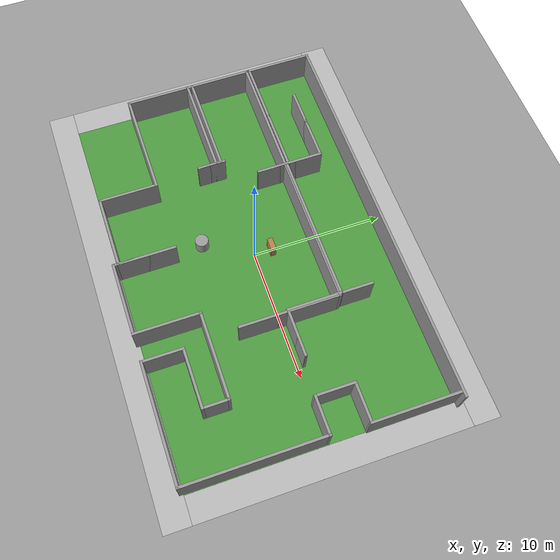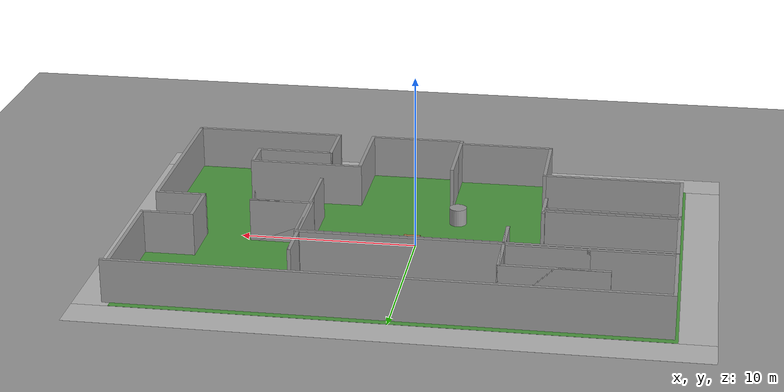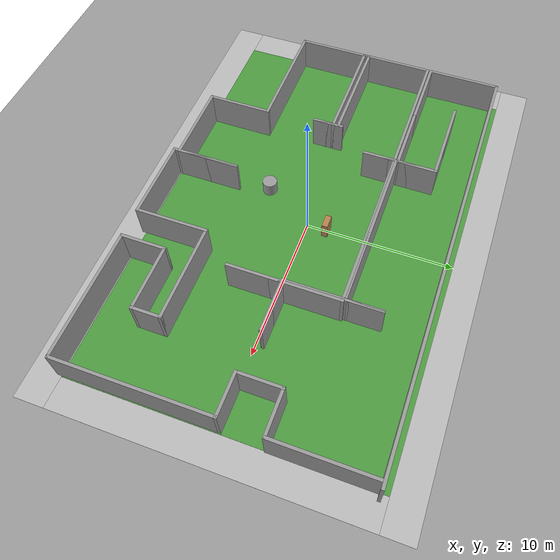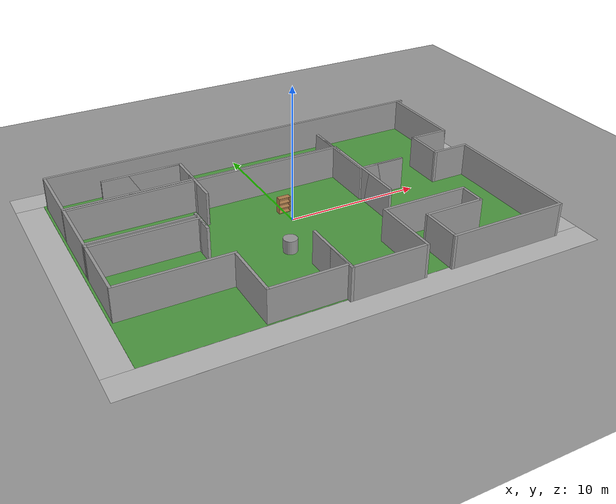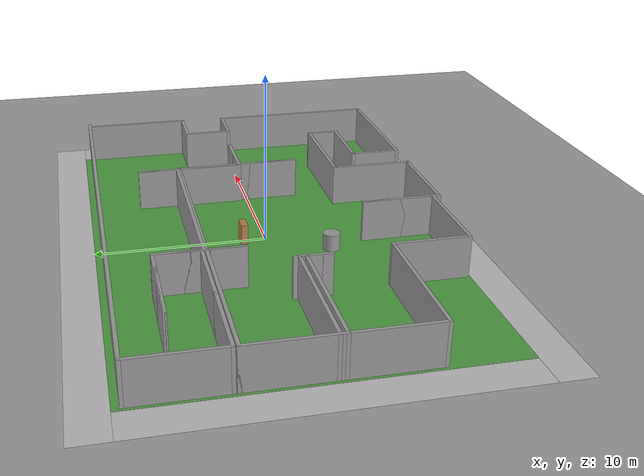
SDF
<sdf version="1.4">
 <world name="default">
  <light name="sun" type="directional">
   <pose>0 0 10 0 -0 0</pose>
   <diffuse>0.8 0.8 0.8 1</diffuse>
   <specular>0.2 0.2 0.2 1</specular>
   <attenuation>
    <range>1000</range>
    <constant>0.9</constant>
    <linear>0.01</linear>
    <quadratic>0.001</quadratic>
   </attenuation>
   <direction>0.5 0.1 -0.9</direction>
  </light>
  <scene><ambient>0.4 0.4 0.4 1</ambient><background>0.7 0.7 0.7 1</background><shadows>1</shadows></scene>
  <physics type="ode">
   <max_step_size>0.01</max_step_size>
   <real_time_factor>1</real_time_factor>
   <real_time_update_rate>100</real_time_update_rate>
   <gravity>0 0 -9.8</gravity>
  </physics>
  <model name="bookshelf">
   <static>1</static>
   <link name="link">
    <inertial><mass>1</mass></inertial>
    <collision name="back">
     <pose>0 0.005 0.6 0 -0 0</pose>
     <geometry><box><size>0.9 0.01 1.2</size></box></geometry>
    </collision>
    <visual name="visual1">
     <pose>0 0.005 0.6 0 -0 0</pose>
     <geometry><box><size>0.9 0.01 1.2</size></box></geometry>
     <material>
      <script><uri>file://media/materials/scripts/gazebo.material</uri><name>Gazebo/Wood</name></script>
     </material>
    </visual>
    <collision name="left_side">
     <pose>0.45 -0.195 0.6 0 -0 0</pose>
     <geometry><box><size>0.02 0.4 1.2</size></box></geometry>
    </collision>
    <visual name="visual2">
     <pose>0.45 -0.195 0.6 0 -0 0</pose>
     <geometry><box><size>0.02 0.4 1.2</size></box></geometry>
     <material>
      <script><uri>file://media/materials/scripts/gazebo.material</uri><name>Gazebo/Wood</name></script>
     </material>
    </visual>
    <collision name="right_side">
     <pose>-0.45 -0.195 0.6 0 -0 0</pose>
     <geometry><box><size>0.02 0.4 1.2</size></box></geometry>
    </collision>
    <visual name="visual3">
     <pose>-0.45 -0.195 0.6 0 -0 0</pose>
     <geometry><box><size>0.02 0.4 1.2</size></box></geometry>
     <material>
      <script><uri>file://media/materials/scripts/gazebo.material</uri><name>Gazebo/Wood</name></script>
     </material>
    </visual>
    <collision name="bottom">
     <pose>0 -0.195 0.03 0 -0 0</pose>
     <geometry><box><size>0.88 0.4 0.06</size></box></geometry>
    </collision>
    <visual name="visual4">
     <pose>0 -0.195 0.03 0 -0 0</pose>
     <geometry><box><size>0.88 0.4 0.06</size></box></geometry>
     <material>
      <script><uri>file://media/materials/scripts/gazebo.material</uri><name>Gazebo/Wood</name></script>
     </material>
    </visual>
    <collision name="top">
     <pose>0 -0.195 1.19 0 -0 0</pose>
     <geometry><box><size>0.88 0.4 0.02</size></box></geometry>
    </collision>
    <visual name="visual5">
     <pose>0 -0.195 1.19 0 -0 0</pose>
     <geometry><box><size>0.88 0.4 0.02</size></box></geometry>
     <material>
      <script><uri>file://media/materials/scripts/gazebo.material</uri><name>Gazebo/Wood</name></script>
     </material>
    </visual>
    <collision name="low_shelf">
     <pose>0 -0.195 0.43 0 -0 0</pose>
     <geometry><box><size>0.88 0.4 0.02</size></box></geometry>
    </collision>
    <visual name="visual6">
     <pose>0 -0.195 0.43 0 -0 0</pose>
     <geometry><box><size>0.88 0.4 0.02</size></box></geometry>
     <material>
      <script><uri>file://media/materials/scripts/gazebo.material</uri><name>Gazebo/Wood</name></script>
     </material>
    </visual>
    <collision name="high_shelf">
     <pose>0 -0.195 0.8 0 -0 0</pose>
     <geometry><box><size>0.88 0.4 0.02</size></box></geometry>
    </collision>
    <visual name="visual7">
     <pose>0 -0.195 0.8 0 -0 0</pose>
     <geometry><box><size>0.88 0.4 0.02</size></box></geometry>
     <material>
      <script><uri>file://media/materials/scripts/gazebo.material</uri><name>Gazebo/Wood</name></script>
     </material>
    </visual>
    <velocity_decay><linear>0</linear><angular>0</angular></velocity_decay>
   </link>
   <pose>0 1.53026 0 0 -0 0</pose>
  </model>
  <model name="ground_plane_0">
   <static>1</static>
   <link name="link">
    <collision name="collision">
     <geometry><plane><normal>0 0 1</normal><size>100 100</size></plane></geometry>
     <surface><friction><ode><mu>100</mu><mu2>50</mu2></ode></friction></surface>
    </collision>
    <visual name="visual">
     <cast_shadows>0</cast_shadows>
     <geometry><plane><normal>0 0 1</normal><size>100 100</size></plane></geometry>
     <material>
      <script><uri>file://media/materials/scripts/gazebo.material</uri><name>Gazebo/Grey</name></script>
     </material>
    </visual>
    <velocity_decay><linear>0</linear><angular>0</angular></velocity_decay>
   </link>
   <pose>0.497681 0 0 0 -0 0</pose>
  </model>
  <model name="unit_cylinder_1">
   <pose>-2.00058 -3.47759 0.50912 0 -0 0.002282</pose>
   <link name="link">
    <inertial>
     <mass>1</mass>
     <inertia><ixx>1</ixx><ixy>0</ixy><ixz>0</ixz><iyy>1</iyy><iyz>0</iyz><izz>1</izz></inertia>
    </inertial>
    <collision name="collision">
     <geometry><cylinder><radius>0.5</radius><length>1</length></cylinder></geometry>
    </collision>
    <visual name="visual">
     <geometry><cylinder><radius>0.5</radius><length>1</length></cylinder></geometry>
     <material>
      <script><uri>file://media/materials/scripts/gazebo.material</uri><name>Gazebo/Grey</name></script>
     </material>
    </visual>
    <velocity_decay><linear>0</linear><angular>0</angular></velocity_decay>
   </link>
   <static>0</static>
  </model>
  <model name="RoboCup 3D Simulation Field">
   <static>1</static>
   <link name="field">
    <pose>0 0 0.01 0 -0 0</pose>
    <collision name="collision">
     <geometry><plane><normal>0 0 1</normal><size>30 20</size></plane></geometry>
     <surface><friction><ode><mu>100</mu><mu2>50</mu2></ode></friction></surface>
    </collision>
    <visual name="base1">
     <pose>0 11 0.001 0 -0 0</pose>
     <cast_shadows>0</cast_shadows>
     <geometry><plane><normal>0 0 1</normal><size>34 2</size></plane></geometry>
     <material>
      <script>
       <uri>model://robocup_3Dsim_field/materials/scripts/</uri>
       <uri>model://robocup_3Dsim_field/materials/textures/</uri>
       <name>RoboCup/FieldBorder</name>
      </script>
     </material>
    </visual>
    <visual name="base2">
     <pose>0 -11 0.001 0 -0 0</pose>
     <cast_shadows>0</cast_shadows>
     <geometry><plane><normal>0 0 1</normal><size>34 2</size></plane></geometry>
     <material>
      <script>
       <uri>model://robocup_3Dsim_field/materials/scripts/</uri>
       <uri>model://robocup_3Dsim_field/materials/textures/</uri>
       <name>RoboCup/FieldBorder</name>
      </script>
     </material>
    </visual>
    <visual name="base3">
     <pose>16 0 0.001 0 -0 0</pose>
     <cast_shadows>0</cast_shadows>
     <geometry><plane><normal>0 0 1</normal><size>2 20</size></plane></geometry>
     <material>
      <script>
       <uri>model://robocup_3Dsim_field/materials/scripts/</uri>
       <uri>model://robocup_3Dsim_field/materials/textures/</uri>
       <name>RoboCup/FieldBorder</name>
      </script>
     </material>
    </visual>
    <visual name="base4">
     <pose>-16 0 0.001 0 -0 0</pose>
     <cast_shadows>0</cast_shadows>
     <geometry><plane><normal>0 0 1</normal><size>2 20</size></plane></geometry>
     <material>
      <script>
       <uri>model://robocup_3Dsim_field/materials/scripts/</uri>
       <uri>model://robocup_3Dsim_field/materials/textures/</uri>
       <name>RoboCup/FieldBorder</name>
      </script>
     </material>
    </visual>
    <visual name="carpet">
     <cast_shadows>0</cast_shadows>
     <geometry><plane><normal>0 0 1</normal><size>30 20</size></plane></geometry>
     <material>
      <script>
       <uri>model://robocup_3Dsim_field/materials/scripts/</uri>
       <uri>model://robocup_3Dsim_field/materials/textures/</uri>
       <name>RoboCup/Grass</name>
      </script>
     </material>
    </visual>
    <velocity_decay><linear>0</linear><angular>0</angular></velocity_decay>
   </link>
  </model>
  <spherical_coordinates>
   <surface_model>EARTH_WGS84</surface_model>
   <latitude_deg>0</latitude_deg>
   <longitude_deg>0</longitude_deg>
   <elevation>0</elevation>
   <heading_deg>0</heading_deg>
  </spherical_coordinates>
  <model name="BuildingFloorPlan">
   <link name="Wall_10">
    <collision name="Wall_10_Collision">
     <geometry><box><size>6.01646 0.2 2.5</size></box></geometry>
     <pose>0 0 1.25 0 -0 0</pose>
    </collision>
    <visual name="Wall_10_Visual">
     <pose>0 0 1.25 0 -0 0</pose>
     <geometry><box><size>6.01646 0.2 2.5</size></box></geometry>
     <material>
      <script><uri>file://media/materials/scripts/gazebo.material</uri><name>Gazebo/Grey</name></script>
     </material>
    </visual>
    <velocity_decay><linear>0</linear><angular>0</angular></velocity_decay>
    <pose>-8.35794 7.15919 0 0 -0 0</pose>
   </link>
   <link name="Wall_11">
    <collision name="Wall_11_Collision">
     <geometry><box><size>5.15018 0.2 2.5</size></box></geometry>
     <pose>0 0 1.25 0 -0 0</pose>
    </collision>
    <visual name="Wall_11_Visual">
     <pose>0 0 1.25 0 -0 0</pose>
     <geometry><box><size>5.15018 0.2 2.5</size></box></geometry>
     <material>
      <script><uri>file://media/materials/scripts/gazebo.material</uri><name>Gazebo/Grey</name></script>
     </material>
    </visual>
    <velocity_decay><linear>0</linear><angular>0</angular></velocity_decay>
    <pose>-5.44971 4.6841 0 0 0 -1.5708</pose>
   </link>
   <link name="Wall_12">
    <collision name="Wall_12_Collision">
     <geometry><box><size>2.42758 0.2 2.5</size></box></geometry>
     <pose>0 0 1.25 0 -0 0</pose>
    </collision>
    <visual name="Wall_12_Visual">
     <pose>0 0 1.25 0 -0 0</pose>
     <geometry><box><size>2.42758 0.2 2.5</size></box></geometry>
     <material>
      <script><uri>file://media/materials/scripts/gazebo.material</uri><name>Gazebo/Grey</name></script>
     </material>
    </visual>
    <velocity_decay><linear>0</linear><angular>0</angular></velocity_decay>
    <pose>-5.44971 3.3228 0 0 -0 1.5708</pose>
   </link>
   <link name="Wall_13">
    <collision name="Wall_13_Collision">
     <geometry><box><size>11.4617 0.2 2.5</size></box></geometry>
     <pose>0 0 1.25 0 -0 0</pose>
    </collision>
    <visual name="Wall_13_Visual">
     <pose>0 0 1.25 0 -0 0</pose>
     <geometry><box><size>11.4617 0.2 2.5</size></box></geometry>
     <material>
      <script><uri>file://media/materials/scripts/gazebo.material</uri><name>Gazebo/Grey</name></script>
     </material>
    </visual>
    <velocity_decay><linear>0</linear><angular>0</angular></velocity_decay>
    <pose>0.181126 4.43659 0 0 -0 0</pose>
   </link>
   <link name="Wall_14">
    <collision name="Wall_14_Collision">
     <geometry><box><size>2.55134 0.2 2.5</size></box></geometry>
     <pose>0 0 1.25 0 -0 0</pose>
    </collision>
    <visual name="Wall_14_Visual">
     <pose>0 0 1.25 0 -0 0</pose>
     <geometry><box><size>2.55134 0.2 2.5</size></box></geometry>
     <material>
      <script><uri>file://media/materials/scripts/gazebo.material</uri><name>Gazebo/Grey</name></script>
     </material>
    </visual>
    <velocity_decay><linear>0</linear><angular>0</angular></velocity_decay>
    <pose>5.81196 5.61226 0 0 -0 1.5708</pose>
   </link>
   <link name="Wall_15">
    <collision name="Wall_15_Collision">
     <geometry><box><size>6.51148 0.2 2.5</size></box></geometry>
     <pose>0 0 1.25 0 -0 0</pose>
    </collision>
    <visual name="Wall_15_Visual">
     <pose>0 0 1.25 0 -0 0</pose>
     <geometry><box><size>6.51148 0.2 2.5</size></box></geometry>
     <material>
      <script><uri>file://media/materials/scripts/gazebo.material</uri><name>Gazebo/Grey</name></script>
     </material>
    </visual>
    <velocity_decay><linear>0</linear><angular>0</angular></velocity_decay>
    <pose>5.81196 3.63218 0 0 0 -1.5708</pose>
   </link>
   <link name="Wall_16">
    <collision name="Wall_16_Collision">
     <geometry><box><size>3.66513 0.2 2.5</size></box></geometry>
     <pose>0 0 1.25 0 -0 0</pose>
    </collision>
    <visual name="Wall_16_Visual">
     <pose>0 0 1.25 0 -0 0</pose>
     <geometry><box><size>3.66513 0.2 2.5</size></box></geometry>
     <material>
      <script><uri>file://media/materials/scripts/gazebo.material</uri><name>Gazebo/Grey</name></script>
     </material>
    </visual>
    <velocity_decay><linear>0</linear><angular>0</angular></velocity_decay>
    <pose>7.54452 0.476442 0 0 -0 0</pose>
   </link>
   <link name="Wall_17">
    <collision name="Wall_17_Collision">
     <geometry><box><size>3.54137 0.2 2.5</size></box></geometry>
     <pose>0 0 1.25 0 -0 0</pose>
    </collision>
    <visual name="Wall_17_Visual">
     <pose>0 0 1.25 0 -0 0</pose>
     <geometry><box><size>3.54137 0.2 2.5</size></box></geometry>
     <material>
      <script><uri>file://media/materials/scripts/gazebo.material</uri><name>Gazebo/Grey</name></script>
     </material>
    </visual>
    <velocity_decay><linear>0</linear><angular>0</angular></velocity_decay>
    <pose>7.6064 0.476442 0 0 -0 3.14159</pose>
   </link>
   <link name="Wall_18">
    <collision name="Wall_18_Collision">
     <geometry><box><size>3.78888 0.2 2.5</size></box></geometry>
     <pose>0 0 1.25 0 -0 0</pose>
    </collision>
    <visual name="Wall_18_Visual">
     <pose>0 0 1.25 0 -0 0</pose>
     <geometry><box><size>3.78888 0.2 2.5</size></box></geometry>
     <material>
      <script><uri>file://media/materials/scripts/gazebo.material</uri><name>Gazebo/Grey</name></script>
     </material>
    </visual>
    <velocity_decay><linear>0</linear><angular>0</angular></velocity_decay>
    <pose>5.93571 -1.318 0 0 0 -1.5708</pose>
   </link>
   <link name="Wall_19">
    <collision name="Wall_19_Collision">
     <geometry><box><size>7.62527 0.2 2.5</size></box></geometry>
     <pose>0 0 1.25 0 -0 0</pose>
    </collision>
    <visual name="Wall_19_Visual">
     <pose>0 0 1.25 0 -0 0</pose>
     <geometry><box><size>7.62527 0.2 2.5</size></box></geometry>
     <material>
      <script><uri>file://media/materials/scripts/gazebo.material</uri><name>Gazebo/Grey</name></script>
     </material>
    </visual>
    <velocity_decay><linear>0</linear><angular>0</angular></velocity_decay>
    <pose>5.93571 0.600196 0 0 -0 1.5708</pose>
   </link>
   <link name="Wall_20">
    <collision name="Wall_20_Collision">
     <geometry><box><size>20.867 0.2 2.5</size></box></geometry>
     <pose>0 0 1.25 0 -0 0</pose>
    </collision>
    <visual name="Wall_20_Visual">
     <pose>0 0 1.25 0 -0 0</pose>
     <geometry><box><size>20.867 0.2 2.5</size></box></geometry>
     <material>
      <script><uri>file://media/materials/scripts/gazebo.material</uri><name>Gazebo/Grey</name></script>
     </material>
    </visual>
    <velocity_decay><linear>0</linear><angular>0</angular></velocity_decay>
    <pose>-4.39779 4.31283 0 0 -0 3.14159</pose>
   </link>
   <link name="Wall_21">
    <collision name="Wall_21_Collision">
     <geometry><box><size>5.15018 0.2 2.5</size></box></geometry>
     <pose>0 0 1.25 0 -0 0</pose>
    </collision>
    <visual name="Wall_21_Visual">
     <pose>0 0 1.25 0 -0 0</pose>
     <geometry><box><size>5.15018 0.2 2.5</size></box></geometry>
     <material>
      <script><uri>file://media/materials/scripts/gazebo.material</uri><name>Gazebo/Grey</name></script>
     </material>
    </visual>
    <velocity_decay><linear>0</linear><angular>0</angular></velocity_decay>
    <pose>-14.7313 1.83774 0 0 0 -1.5708</pose>
   </link>
   <link name="Wall_22">
    <collision name="Wall_22_Collision">
     <geometry><box><size>7.74903 0.2 2.5</size></box></geometry>
     <pose>0 0 1.25 0 -0 0</pose>
    </collision>
    <visual name="Wall_22_Visual">
     <pose>0 0 1.25 0 -0 0</pose>
     <geometry><box><size>7.74903 0.2 2.5</size></box></geometry>
     <material>
      <script><uri>file://media/materials/scripts/gazebo.material</uri><name>Gazebo/Grey</name></script>
     </material>
    </visual>
    <velocity_decay><linear>0</linear><angular>0</angular></velocity_decay>
    <pose>-10.9568 -0.637349 0 0 -0 0</pose>
   </link>
   <link name="Wall_23">
    <collision name="Wall_23_Collision">
     <geometry><box><size>0.818773 0.2 2.5</size></box></geometry>
     <pose>0 0 1.25 0 -0 0</pose>
    </collision>
    <visual name="Wall_23_Visual">
     <pose>0 0 1.25 0 -0 0</pose>
     <geometry><box><size>0.818773 0.2 2.5</size></box></geometry>
     <material>
      <script><uri>file://media/materials/scripts/gazebo.material</uri><name>Gazebo/Grey</name></script>
     </material>
    </visual>
    <velocity_decay><linear>0</linear><angular>0</angular></velocity_decay>
    <pose>-7.18227 -0.327963 0 0 -0 1.5708</pose>
   </link>
   <link name="Wall_24">
    <collision name="Wall_24_Collision">
     <geometry><box><size>2.18007 0.2 2.5</size></box></geometry>
     <pose>0 0 1.25 0 -0 0</pose>
    </collision>
    <visual name="Wall_24_Visual">
     <pose>0 0 1.25 0 -0 0</pose>
     <geometry><box><size>2.18007 0.2 2.5</size></box></geometry>
     <material>
      <script><uri>file://media/materials/scripts/gazebo.material</uri><name>Gazebo/Grey</name></script>
     </material>
    </visual>
    <velocity_decay><linear>0</linear><angular>0</angular></velocity_decay>
    <pose>-7.18227 -1.00861 0 0 0 -1.5708</pose>
   </link>
   <link name="Wall_25">
    <collision name="Wall_25_Collision">
     <geometry><box><size>1.93256 0.2 2.5</size></box></geometry>
     <pose>0 0 1.25 0 -0 0</pose>
    </collision>
    <visual name="Wall_25_Visual">
     <pose>0 0 1.25 0 -0 0</pose>
     <geometry><box><size>1.93256 0.2 2.5</size></box></geometry>
     <material>
      <script><uri>file://media/materials/scripts/gazebo.material</uri><name>Gazebo/Grey</name></script>
     </material>
    </visual>
    <velocity_decay><linear>0</linear><angular>0</angular></velocity_decay>
    <pose>-7.18227 -1.13237 0 0 -0 1.5708</pose>
   </link>
   <link name="Wall_26">
    <collision name="Wall_26_Collision">
     <geometry><box><size>7.74903 0.2 2.5</size></box></geometry>
     <pose>0 0 1.25 0 -0 0</pose>
    </collision>
    <visual name="Wall_26_Visual">
     <pose>0 0 1.25 0 -0 0</pose>
     <geometry><box><size>7.74903 0.2 2.5</size></box></geometry>
     <material>
      <script><uri>file://media/materials/scripts/gazebo.material</uri><name>Gazebo/Grey</name></script>
     </material>
    </visual>
    <velocity_decay><linear>0</linear><angular>0</angular></velocity_decay>
    <pose>-10.9568 -0.266086 0 0 -0 3.14159</pose>
   </link>
   <link name="Wall_27">
    <collision name="Wall_27_Collision">
     <geometry><box><size>5.39769 0.2 2.5</size></box></geometry>
     <pose>0 0 1.25 0 -0 0</pose>
    </collision>
    <visual name="Wall_27_Visual">
     <pose>0 0 1.25 0 -0 0</pose>
     <geometry><box><size>5.39769 0.2 2.5</size></box></geometry>
     <material>
      <script><uri>file://media/materials/scripts/gazebo.material</uri><name>Gazebo/Grey</name></script>
     </material>
    </visual>
    <velocity_decay><linear>0</linear><angular>0</angular></velocity_decay>
    <pose>-14.7313 -2.86493 0 0 0 -1.5708</pose>
   </link>
   <link name="Wall_28">
    <collision name="Wall_28_Collision">
     <geometry><box><size>8.12029 0.2 2.5</size></box></geometry>
     <pose>0 0 1.25 0 -0 0</pose>
    </collision>
    <visual name="Wall_28_Visual">
     <pose>0 0 1.25 0 -0 0</pose>
     <geometry><box><size>8.12029 0.2 2.5</size></box></geometry>
     <material>
      <script><uri>file://media/materials/scripts/gazebo.material</uri><name>Gazebo/Grey</name></script>
     </material>
    </visual>
    <velocity_decay><linear>0</linear><angular>0</angular></velocity_decay>
    <pose>-10.7712 -5.46378 0 0 -0 0</pose>
   </link>
   <link name="Wall_29">
    <collision name="Wall_29_Collision">
     <geometry><box><size>4.53141 0.2 2.5</size></box></geometry>
     <pose>0 0 1.25 0 -0 0</pose>
    </collision>
    <visual name="Wall_29_Visual">
     <pose>0 0 1.25 0 -0 0</pose>
     <geometry><box><size>4.53141 0.2 2.5</size></box></geometry>
     <material>
      <script><uri>file://media/materials/scripts/gazebo.material</uri><name>Gazebo/Grey</name></script>
     </material>
    </visual>
    <velocity_decay><linear>0</linear><angular>0</angular></velocity_decay>
    <pose>-6.81101 -7.62948 0 0 0 -1.5708</pose>
   </link>
   <link name="Wall_30">
    <collision name="Wall_30_Collision">
     <geometry><box><size>5.6452 0.2 2.5</size></box></geometry>
     <pose>0 0 1.25 0 -0 0</pose>
    </collision>
    <visual name="Wall_30_Visual">
     <pose>0 0 1.25 0 -0 0</pose>
     <geometry><box><size>5.6452 0.2 2.5</size></box></geometry>
     <material>
      <script><uri>file://media/materials/scripts/gazebo.material</uri><name>Gazebo/Grey</name></script>
     </material>
    </visual>
    <velocity_decay><linear>0</linear><angular>0</angular></velocity_decay>
    <pose>-4.08841 -9.79519 0 0 -0 0</pose>
   </link>
   <link name="Wall_31">
    <collision name="Wall_31_Collision">
     <geometry><box><size>4.40765 0.2 2.5</size></box></geometry>
     <pose>0 0 1.25 0 -0 0</pose>
    </collision>
    <visual name="Wall_31_Visual">
     <pose>0 0 1.25 0 -0 0</pose>
     <geometry><box><size>4.40765 0.2 2.5</size></box></geometry>
     <material>
      <script><uri>file://media/materials/scripts/gazebo.material</uri><name>Gazebo/Grey</name></script>
     </material>
    </visual>
    <velocity_decay><linear>0</linear><angular>0</angular></velocity_decay>
    <pose>-1.36581 -7.69136 0 0 -0 1.5708</pose>
   </link>
   <link name="Wall_32">
    <collision name="Wall_32_Collision">
     <geometry><box><size>4.77892 0.2 2.5</size></box></geometry>
     <pose>0 0 1.25 0 -0 0</pose>
    </collision>
    <visual name="Wall_32_Visual">
     <pose>0 0 1.25 0 -0 0</pose>
     <geometry><box><size>4.77892 0.2 2.5</size></box></geometry>
     <material>
      <script><uri>file://media/materials/scripts/gazebo.material</uri><name>Gazebo/Grey</name></script>
     </material>
    </visual>
    <velocity_decay><linear>0</linear><angular>0</angular></velocity_decay>
    <pose>-1.36581 -7.87699 0 0 0 -1.5708</pose>
   </link>
   <link name="Wall_33">
    <collision name="Wall_33_Collision">
     <geometry><box><size>5.6452 0.2 2.5</size></box></geometry>
     <pose>0 0 1.25 0 -0 0</pose>
    </collision>
    <visual name="Wall_33_Visual">
     <pose>0 0 1.25 0 -0 0</pose>
     <geometry><box><size>5.6452 0.2 2.5</size></box></geometry>
     <material>
      <script><uri>file://media/materials/scripts/gazebo.material</uri><name>Gazebo/Grey</name></script>
     </material>
    </visual>
    <velocity_decay><linear>0</linear><angular>0</angular></velocity_decay>
    <pose>1.35679 -10.1664 0 0 -0 0</pose>
   </link>
   <link name="Wall_34">
    <collision name="Wall_34_Collision">
     <geometry><box><size>5.02643 0.2 2.5</size></box></geometry>
     <pose>0 0 1.25 0 -0 0</pose>
    </collision>
    <visual name="Wall_34_Visual">
     <pose>0 0 1.25 0 -0 0</pose>
     <geometry><box><size>5.02643 0.2 2.5</size></box></geometry>
     <material>
      <script><uri>file://media/materials/scripts/gazebo.material</uri><name>Gazebo/Grey</name></script>
     </material>
    </visual>
    <velocity_decay><linear>0</linear><angular>0</angular></velocity_decay>
    <pose>4.07939 -7.75324 0 0 -0 1.5708</pose>
   </link>
   <link name="Wall_35">
    <collision name="Wall_35_Collision">
     <geometry><box><size>6.63524 0.2 2.5</size></box></geometry>
     <pose>0 0 1.25 0 -0 0</pose>
    </collision>
    <visual name="Wall_35_Visual">
     <pose>0 0 1.25 0 -0 0</pose>
     <geometry><box><size>6.63524 0.2 2.5</size></box></geometry>
     <material>
      <script><uri>file://media/materials/scripts/gazebo.material</uri><name>Gazebo/Grey</name></script>
     </material>
    </visual>
    <velocity_decay><linear>0</linear><angular>0</angular></velocity_decay>
    <pose>7.29701 -5.34002 0 0 -0 0</pose>
   </link>
   <link name="Wall_36">
    <collision name="Wall_36_Collision">
     <geometry><box><size>2.05632 0.2 2.5</size></box></geometry>
     <pose>0 0 1.25 0 -0 0</pose>
    </collision>
    <visual name="Wall_36_Visual">
     <pose>0 0 1.25 0 -0 0</pose>
     <geometry><box><size>2.05632 0.2 2.5</size></box></geometry>
     <material>
      <script><uri>file://media/materials/scripts/gazebo.material</uri><name>Gazebo/Grey</name></script>
     </material>
    </visual>
    <velocity_decay><linear>0</linear><angular>0</angular></velocity_decay>
    <pose>10.5146 -6.26818 0 0 0 -1.5708</pose>
   </link>
   <link name="Wall_37">
    <collision name="Wall_37_Collision">
     <geometry><box><size>4.53141 0.2 2.5</size></box></geometry>
     <pose>0 0 1.25 0 -0 0</pose>
    </collision>
    <visual name="Wall_37_Visual">
     <pose>0 0 1.25 0 -0 0</pose>
     <geometry><box><size>4.53141 0.2 2.5</size></box></geometry>
     <material>
      <script><uri>file://media/materials/scripts/gazebo.material</uri><name>Gazebo/Grey</name></script>
     </material>
    </visual>
    <velocity_decay><linear>0</linear><angular>0</angular></velocity_decay>
    <pose>8.34892 -7.19634 0 0 -0 3.14159</pose>
   </link>
   <link name="Wall_38">
    <collision name="Wall_38_Collision">
     <geometry><box><size>3.17011 0.2 2.5</size></box></geometry>
     <pose>0 0 1.25 0 -0 0</pose>
    </collision>
    <visual name="Wall_38_Visual">
     <pose>0 0 1.25 0 -0 0</pose>
     <geometry><box><size>3.17011 0.2 2.5</size></box></geometry>
     <material>
      <script><uri>file://media/materials/scripts/gazebo.material</uri><name>Gazebo/Grey</name></script>
     </material>
    </visual>
    <velocity_decay><linear>0</linear><angular>0</angular></velocity_decay>
    <pose>6.18322 -8.68139 0 0 0 -1.5708</pose>
   </link>
   <link name="Wall_39">
    <collision name="Wall_39_Collision">
     <geometry><box><size>8.86282 0.2 2.5</size></box></geometry>
     <pose>0 0 1.25 0 -0 0</pose>
    </collision>
    <visual name="Wall_39_Visual">
     <pose>0 0 1.25 0 -0 0</pose>
     <geometry><box><size>8.86282 0.2 2.5</size></box></geometry>
     <material>
      <script><uri>file://media/materials/scripts/gazebo.material</uri><name>Gazebo/Grey</name></script>
     </material>
    </visual>
    <velocity_decay><linear>0</linear><angular>0</angular></velocity_decay>
    <pose>10.5146 -10.1664 0 0 -0 0</pose>
   </link>
   <link name="Wall_4">
    <collision name="Wall_4_Collision">
     <geometry><box><size>30.2724 0.2 2.5</size></box></geometry>
     <pose>0 0 1.25 0 -0 0</pose>
    </collision>
    <visual name="Wall_4_Visual">
     <pose>0 0 1.25 0 -0 0</pose>
     <geometry><box><size>30.2724 0.2 2.5</size></box></geometry>
     <material>
      <script><uri>file://media/materials/scripts/gazebo.material</uri><name>Gazebo/Grey</name></script>
     </material>
    </visual>
    <velocity_decay><linear>0</linear><angular>0</angular></velocity_decay>
    <pose>0.30488 9.51052 0 0 -0 3.14159</pose>
   </link>
   <link name="Wall_40">
    <collision name="Wall_40_Collision">
     <geometry><box><size>10.4716 0.2 2.5</size></box></geometry>
     <pose>0 0 1.25 0 -0 0</pose>
    </collision>
    <visual name="Wall_40_Visual">
     <pose>0 0 1.25 0 -0 0</pose>
     <geometry><box><size>10.4716 0.2 2.5</size></box></geometry>
     <material>
      <script><uri>file://media/materials/scripts/gazebo.material</uri><name>Gazebo/Grey</name></script>
     </material>
    </visual>
    <velocity_decay><linear>0</linear><angular>0</angular></velocity_decay>
    <pose>14.846 -5.03064 0 0 -0 1.5708</pose>
   </link>
   <link name="Wall_41">
    <collision name="Wall_41_Collision">
     <geometry><box><size>2.9226 0.2 2.5</size></box></geometry>
     <pose>0 0 1.25 0 -0 0</pose>
    </collision>
    <visual name="Wall_41_Visual">
     <pose>0 0 1.25 0 -0 0</pose>
     <geometry><box><size>2.9226 0.2 2.5</size></box></geometry>
     <material>
      <script><uri>file://media/materials/scripts/gazebo.material</uri><name>Gazebo/Grey</name></script>
     </material>
    </visual>
    <velocity_decay><linear>0</linear><angular>0</angular></velocity_decay>
    <pose>13.4847 0.105178 0 0 -0 3.14159</pose>
   </link>
   <link name="Wall_42">
    <collision name="Wall_42_Collision">
     <geometry><box><size>3.04635 0.2 2.5</size></box></geometry>
     <pose>0 0 1.25 0 -0 0</pose>
    </collision>
    <visual name="Wall_42_Visual">
     <pose>0 0 1.25 0 -0 0</pose>
     <geometry><box><size>3.04635 0.2 2.5</size></box></geometry>
     <material>
      <script><uri>file://media/materials/scripts/gazebo.material</uri><name>Gazebo/Grey</name></script>
     </material>
    </visual>
    <velocity_decay><linear>0</linear><angular>0</angular></velocity_decay>
    <pose>12.1234 1.52835 0 0 -0 1.5708</pose>
   </link>
   <link name="Wall_43">
    <collision name="Wall_43_Collision">
     <geometry><box><size>3.04635 0.2 2.5</size></box></geometry>
     <pose>0 0 1.25 0 -0 0</pose>
    </collision>
    <visual name="Wall_43_Visual">
     <pose>0 0 1.25 0 -0 0</pose>
     <geometry><box><size>3.04635 0.2 2.5</size></box></geometry>
     <material>
      <script><uri>file://media/materials/scripts/gazebo.material</uri><name>Gazebo/Grey</name></script>
     </material>
    </visual>
    <velocity_decay><linear>0</linear><angular>0</angular></velocity_decay>
    <pose>13.5466 2.95153 0 0 -0 0</pose>
   </link>
   <link name="Wall_44">
    <collision name="Wall_44_Collision">
     <geometry><box><size>6.63524 0.2 2.5</size></box></geometry>
     <pose>0 0 1.25 0 -0 0</pose>
    </collision>
    <visual name="Wall_44_Visual">
     <pose>0 0 1.25 0 -0 0</pose>
     <geometry><box><size>6.63524 0.2 2.5</size></box></geometry>
     <material>
      <script><uri>file://media/materials/scripts/gazebo.material</uri><name>Gazebo/Grey</name></script>
     </material>
    </visual>
    <velocity_decay><linear>0</linear><angular>0</angular></velocity_decay>
    <pose>14.9698 6.16915 0 0 -0 1.5708</pose>
   </link>
   <link name="Wall_5">
    <collision name="Wall_5_Collision">
     <geometry><box><size>5.15018 0.2 2.5</size></box></geometry>
     <pose>0 0 1.25 0 -0 0</pose>
    </collision>
    <visual name="Wall_5_Visual">
     <pose>0 0 1.25 0 -0 0</pose>
     <geometry><box><size>5.15018 0.2 2.5</size></box></geometry>
     <material>
      <script><uri>file://media/materials/scripts/gazebo.material</uri><name>Gazebo/Grey</name></script>
     </material>
    </visual>
    <velocity_decay><linear>0</linear><angular>0</angular></velocity_decay>
    <pose>-14.7313 7.03543 0 0 0 -1.5708</pose>
   </link>
   <link name="Wall_6">
    <collision name="Wall_6_Collision">
     <geometry><box><size>4.90267 0.2 2.5</size></box></geometry>
     <pose>0 0 1.25 0 -0 0</pose>
    </collision>
    <visual name="Wall_6_Visual">
     <pose>0 0 1.25 0 -0 0</pose>
     <geometry><box><size>4.90267 0.2 2.5</size></box></geometry>
     <material>
      <script><uri>file://media/materials/scripts/gazebo.material</uri><name>Gazebo/Grey</name></script>
     </material>
    </visual>
    <velocity_decay><linear>0</linear><angular>0</angular></velocity_decay>
    <pose>-12.38 4.56034 0 0 -0 0</pose>
   </link>
   <link name="Wall_7">
    <collision name="Wall_7_Collision">
     <geometry><box><size>4.77892 0.2 2.5</size></box></geometry>
     <pose>0 0 1.25 0 -0 0</pose>
    </collision>
    <visual name="Wall_7_Visual">
     <pose>0 0 1.25 0 -0 0</pose>
     <geometry><box><size>4.77892 0.2 2.5</size></box></geometry>
     <material>
      <script><uri>file://media/materials/scripts/gazebo.material</uri><name>Gazebo/Grey</name></script>
     </material>
    </visual>
    <velocity_decay><linear>0</linear><angular>0</angular></velocity_decay>
    <pose>-7.73916 4.56034 0 0 -0 0</pose>
   </link>
   <link name="Wall_8">
    <collision name="Wall_8_Collision">
     <geometry><box><size>2.79885 0.2 2.5</size></box></geometry>
     <pose>0 0 1.25 0 -0 0</pose>
    </collision>
    <visual name="Wall_8_Visual">
     <pose>0 0 1.25 0 -0 0</pose>
     <geometry><box><size>2.79885 0.2 2.5</size></box></geometry>
     <material>
      <script><uri>file://media/materials/scripts/gazebo.material</uri><name>Gazebo/Grey</name></script>
     </material>
    </visual>
    <velocity_decay><linear>0</linear><angular>0</angular></velocity_decay>
    <pose>-5.44971 5.85976 0 0 -0 1.5708</pose>
   </link>
   <link name="Wall_9">
    <collision name="Wall_9_Collision">
     <geometry><box><size>6.01646 0.2 2.5</size></box></geometry>
     <pose>0 0 1.25 0 -0 0</pose>
    </collision>
    <visual name="Wall_9_Visual">
     <pose>0 0 1.25 0 -0 0</pose>
     <geometry><box><size>6.01646 0.2 2.5</size></box></geometry>
     <material>
      <script><uri>file://media/materials/scripts/gazebo.material</uri><name>Gazebo/Grey</name></script>
     </material>
    </visual>
    <velocity_decay><linear>0</linear><angular>0</angular></velocity_decay>
    <pose>-8.35794 7.15919 0 0 -0 3.14159</pose>
   </link>
   <static>1</static>
  </model>
 </world>
</sdf>
